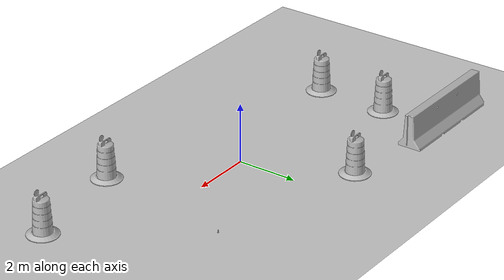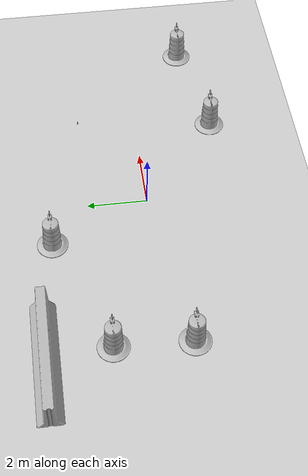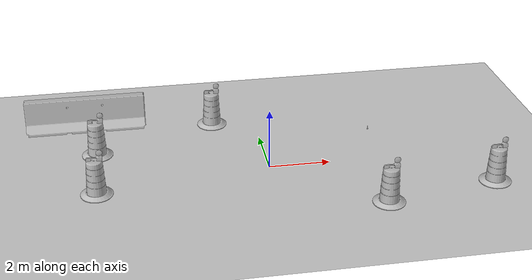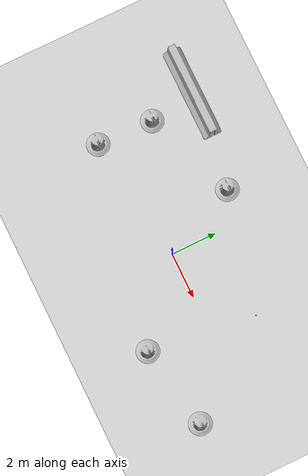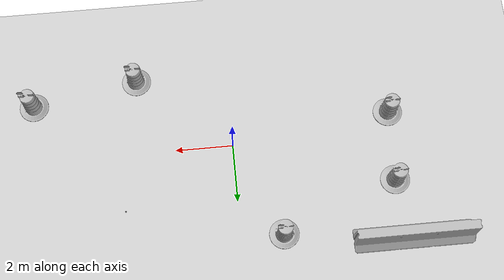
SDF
<sdf version="1.6">
 <world name="default">
  <light name="sun" type="directional">
   <pose>0 0 10 0 -0 0</pose>
   <diffuse>0.8 0.8 0.8 1</diffuse>
   <specular>0.1 0.1 0.1 1</specular>
   <attenuation>
    <range>1000</range>
    <constant>0.9</constant>
    <linear>0.01</linear>
    <quadratic>0.001</quadratic>
   </attenuation>
   <direction>-0.5 0.5 -1</direction>
  </light>
  <model name="ground_plane">
   <static>1</static>
   <link name="link">
    <collision name="collision">
     <geometry><plane><normal>0 0 1</normal><size>100 100</size></plane></geometry>
     <surface><friction><ode><mu>100</mu><mu2>50</mu2></ode></friction></surface>
    </collision>
    <visual name="visual">
     <cast_shadows>0</cast_shadows>
     <geometry><plane><normal>0 0 1</normal><size>100 100</size></plane></geometry>
     <material>
      <script><uri>file://media/materials/scripts/gazebo.material</uri><name>Gazebo/Grey</name></script>
     </material>
    </visual>
   </link>
  </model>
  <gravity>0 0 -9.8</gravity>
  <magnetic_field>6e-06 2.3e-05 -4.2e-05</magnetic_field>
  <atmosphere type="adiabatic"/>
  <physics name="default_physics" default="0" type="ode">
   <max_step_size>0.001</max_step_size>
   <real_time_factor>1</real_time_factor>
   <real_time_update_rate>1000</real_time_update_rate>
  </physics>
  <scene><ambient>0.4 0.4 0.4 1</ambient><background>0.7 0.7 0.7 1</background><shadows>1</shadows></scene>
  <spherical_coordinates>
   <surface_model>EARTH_WGS84</surface_model>
   <latitude_deg>0</latitude_deg>
   <longitude_deg>0</longitude_deg>
   <elevation>0</elevation>
   <heading_deg>0</heading_deg>
  </spherical_coordinates>
  <model name="Construction Barrel">
   <static>1</static>
   <link name="link">
    <inertial>
     <pose>0 0 0.4 0 -0 0</pose>
     <mass>500</mass>
     <inertia><ixx>51.2096</ixx><iyy>51.2096</iyy><izz>25</izz><ixy>0</ixy><ixz>0</ixz><iyz>0</iyz></inertia>
    </inertial>
    <collision name="collision">
     <geometry>
      <mesh><uri>model://construction_barrel/meshes/construction_barrel.dae</uri><scale>1 1 1</scale></mesh>
     </geometry>
    </collision>
    <visual name="visual">
     <geometry>
      <mesh><uri>model://construction_barrel/meshes/construction_barrel.dae</uri><scale>1 1 1</scale></mesh>
     </geometry>
    </visual>
   </link>
   <pose>3.21993 -2.68224 0 0 -0 0</pose>
  </model>
  <model name="Construction Cone">
   <static>1</static>
   <link name="link">
    <collision name="collision">
     <geometry>
      <mesh><scale>1 1 1</scale><uri>model://construction_cone/meshes/construction_cone.dae</uri></mesh>
     </geometry>
    </collision>
    <visual name="visual">
     <geometry>
      <mesh><scale>1 1 1</scale><uri>model://construction_cone/meshes/construction_cone.dae</uri></mesh>
     </geometry>
    </visual>
   </link>
   <pose>3.82479 2.01253 0 0 -0 0</pose>
  </model>
  <model name="Construction Barrel_0">
   <static>1</static>
   <link name="link">
    <inertial>
     <pose>0 0 0.4 0 -0 0</pose>
     <mass>500</mass>
     <inertia><ixx>51.2096</ixx><iyy>51.2096</iyy><izz>25</izz><ixy>0</ixy><ixz>0</ixz><iyz>0</iyz></inertia>
    </inertial>
    <collision name="collision">
     <geometry>
      <mesh><uri>model://construction_barrel/meshes/construction_barrel.dae</uri><scale>1 1 1</scale></mesh>
     </geometry>
    </collision>
    <visual name="visual">
     <geometry>
      <mesh><uri>model://construction_barrel/meshes/construction_barrel.dae</uri><scale>1 1 1</scale></mesh>
     </geometry>
    </visual>
   </link>
   <pose>-5.53378 -0.762044 0 0 -0 0</pose>
  </model>
  <model name="Construction Barrel_1">
   <static>1</static>
   <link name="link">
    <inertial>
     <pose>0 0 0.4 0 -0 0</pose>
     <mass>500</mass>
     <inertia><ixx>51.2096</ixx><iyy>51.2096</iyy><izz>25</izz><ixy>0</ixy><ixz>0</ixz><iyz>0</iyz></inertia>
    </inertial>
    <collision name="collision">
     <geometry>
      <mesh><uri>model://construction_barrel/meshes/construction_barrel.dae</uri><scale>1 1 1</scale></mesh>
     </geometry>
    </collision>
    <visual name="visual">
     <geometry>
      <mesh><uri>model://construction_barrel/meshes/construction_barrel.dae</uri><scale>1 1 1</scale></mesh>
     </geometry>
    </visual>
   </link>
   <pose>-5.44869 1.71148 0 0 -0 0</pose>
  </model>
  <model name="Construction Barrel_2">
   <static>1</static>
   <link name="link">
    <inertial>
     <pose>0 0 0.4 0 -0 0</pose>
     <mass>500</mass>
     <inertia><ixx>51.2096</ixx><iyy>51.2096</iyy><izz>25</izz><ixy>0</ixy><ixz>0</ixz><iyz>0</iyz></inertia>
    </inertial>
    <collision name="collision">
     <geometry>
      <mesh><uri>model://construction_barrel/meshes/construction_barrel.dae</uri><scale>1 1 1</scale></mesh>
     </geometry>
    </collision>
    <visual name="visual">
     <geometry>
      <mesh><uri>model://construction_barrel/meshes/construction_barrel.dae</uri><scale>1 1 1</scale></mesh>
     </geometry>
    </visual>
   </link>
   <pose>-1.45403 3.27084 0 0 -0 0</pose>
  </model>
  <model name="Construction Barrel_3">
   <static>1</static>
   <link name="link">
    <inertial>
     <pose>0 0 0.4 0 -0 0</pose>
     <mass>500</mass>
     <inertia><ixx>51.2096</ixx><iyy>51.2096</iyy><izz>25</izz><ixy>0</ixy><ixz>0</ixz><iyz>0</iyz></inertia>
    </inertial>
    <collision name="collision">
     <geometry>
      <mesh><uri>model://construction_barrel/meshes/construction_barrel.dae</uri><scale>1 1 1</scale></mesh>
     </geometry>
    </collision>
    <visual name="visual">
     <geometry>
      <mesh><uri>model://construction_barrel/meshes/construction_barrel.dae</uri><scale>1 1 1</scale></mesh>
     </geometry>
    </visual>
   </link>
   <pose>6.86757 -2.03764 0 0 -0 0</pose>
  </model>
  <model name="jersey_barrier">
   <static>1</static>
   <link name="link">
    <visual name="visual">
     <geometry>
      <mesh><uri>model://jersey_barrier/meshes/jersey_barrier.dae</uri><scale>1 1 1</scale></mesh>
     </geometry>
    </visual>
    <collision name="upright">
     <pose>0 0 0.5715 0 -0 0</pose>
     <geometry><box><size>4.06542 0.3063 1.143</size></box></geometry>
    </collision>
    <collision name="base">
     <pose>0 0 0.032258 0 -0 0</pose>
     <geometry><box><size>4.06542 0.8107 0.064516</size></box></geometry>
    </collision>
    <collision name="base2">
     <pose>0 0 0.1 0 -0 0</pose>
     <geometry><box><size>4.06542 0.65 0.1</size></box></geometry>
    </collision>
    <collision name="base3">
     <pose>0 0 0.2 0 -0 0</pose>
     <geometry><box><size>4.06542 0.5 0.1</size></box></geometry>
    </collision>
    <collision name="left-angle">
     <pose>0 -0.224 0.2401 0.9 -0 0</pose>
     <geometry><box><size>4.06542 0.5 0.064516</size></box></geometry>
    </collision>
    <collision name="right-angle">
     <pose>0 0.224 0.2401 -0.9 0 0</pose>
     <geometry><box><size>4.06542 0.5 0.064516</size></box></geometry>
    </collision>
   </link>
   <pose>-5.77697 3.73798 0 0 -0 0</pose>
  </model>
 </world>
</sdf>
